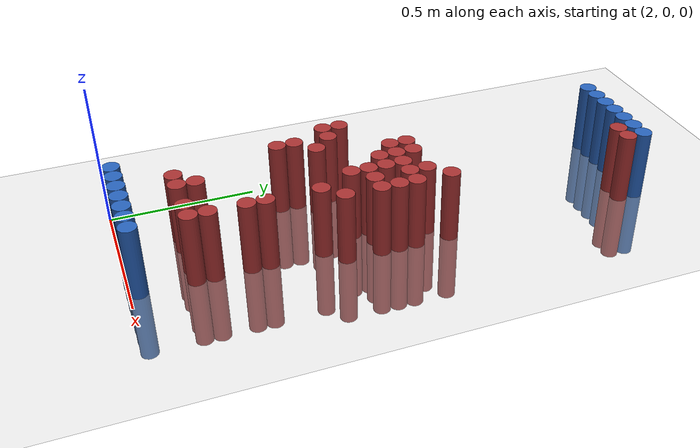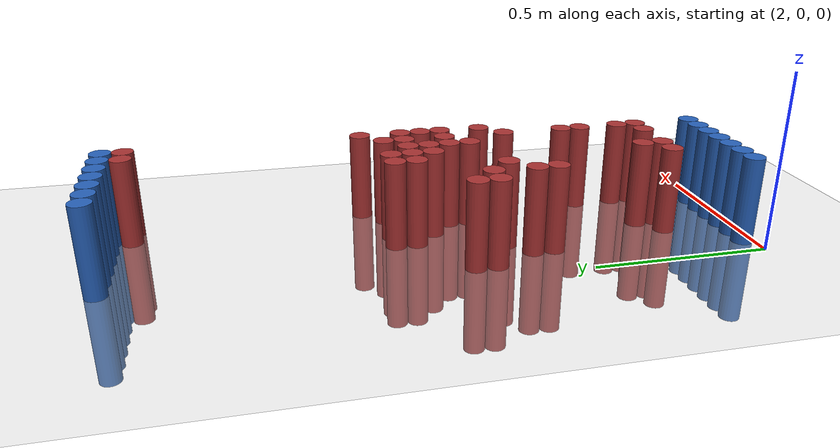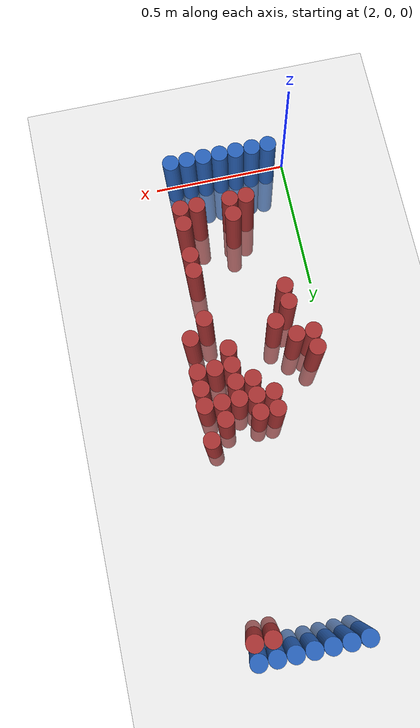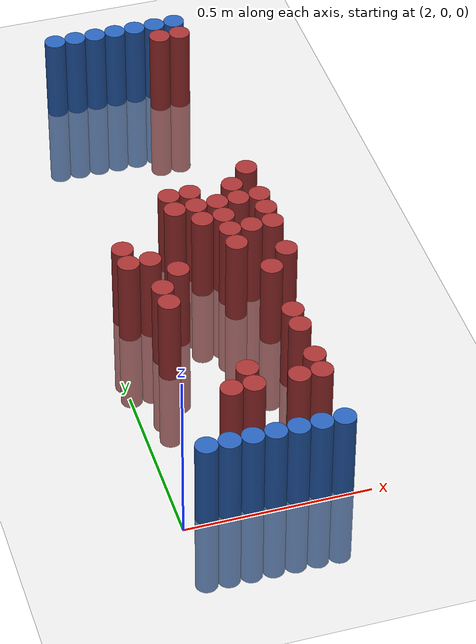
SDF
<sdf version="1.6">
 <world name="default">
  <model name="ground_plane">
   <static>1</static>
   <link name="link">
    <collision name="collision">
     <geometry><plane><normal>0 0 1</normal><size>100 100</size></plane></geometry>
     <surface><friction><ode><mu>100</mu><mu2>50</mu2></ode></friction></surface>
    </collision>
    <visual name="visual">
     <cast_shadows>0</cast_shadows>
     <geometry><plane><normal>0 0 1</normal><size>100 100</size></plane></geometry>
     <material>
      <script><uri>file://media/materials/scripts/gazebo.material</uri><name>Gazebo/Grey</name></script>
     </material>
    </visual>
   </link>
  </model>
  <model name="unit_cylinder_96">
   <static>1</static>
   <pose>2.130000 1.770000 0.000000 0.000000 0.000000 0.000000</pose>
   <link name="link">
    <inertial>
     <mass>1</mass>
     <inertia><ixx>0.145833</ixx><ixy>0</ixy><ixz>0</ixz><iyy>0.145833</iyy><iyz>0</iyz><izz>0.125</izz></inertia>
    </inertial>
    <collision name="collision">
     <geometry><cylinder><radius>0.030000</radius><length>0.5</length></cylinder></geometry>
    </collision>
    <visual name="visual">
     <geometry><cylinder><radius>0.030000</radius><length>0.5</length></cylinder></geometry>
     <material>
      <ambient>0.152000 0.379000 0.720000 1</ambient>
      <diffuse>0.152000 0.379000 0.720000 1</diffuse>
     </material>
     <material>
      <script><name>Gazebo/Grey</name><uri>file://media/materials/scripts/gazebo.material</uri></script>
     </material>
    </visual>
   </link>
  </model>
  <model name="unit_cylinder_97">
   <static>1</static>
   <pose>2.190000 1.770000 0.000000 0.000000 0.000000 0.000000</pose>
   <link name="link">
    <inertial>
     <mass>1</mass>
     <inertia><ixx>0.145833</ixx><ixy>0</ixy><ixz>0</ixz><iyy>0.145833</iyy><iyz>0</iyz><izz>0.125</izz></inertia>
    </inertial>
    <collision name="collision">
     <geometry><cylinder><radius>0.030000</radius><length>0.5</length></cylinder></geometry>
    </collision>
    <visual name="visual">
     <geometry><cylinder><radius>0.030000</radius><length>0.5</length></cylinder></geometry>
     <material>
      <ambient>0.152000 0.379000 0.720000 1</ambient>
      <diffuse>0.152000 0.379000 0.720000 1</diffuse>
     </material>
     <material>
      <script><name>Gazebo/Grey</name><uri>file://media/materials/scripts/gazebo.material</uri></script>
     </material>
    </visual>
   </link>
  </model>
  <model name="unit_cylinder_98">
   <static>1</static>
   <pose>2.250000 1.770000 0.000000 0.000000 0.000000 0.000000</pose>
   <link name="link">
    <inertial>
     <mass>1</mass>
     <inertia><ixx>0.145833</ixx><ixy>0</ixy><ixz>0</ixz><iyy>0.145833</iyy><iyz>0</iyz><izz>0.125</izz></inertia>
    </inertial>
    <collision name="collision">
     <geometry><cylinder><radius>0.030000</radius><length>0.5</length></cylinder></geometry>
    </collision>
    <visual name="visual">
     <geometry><cylinder><radius>0.030000</radius><length>0.5</length></cylinder></geometry>
     <material>
      <ambient>0.152000 0.379000 0.720000 1</ambient>
      <diffuse>0.152000 0.379000 0.720000 1</diffuse>
     </material>
     <material>
      <script><name>Gazebo/Grey</name><uri>file://media/materials/scripts/gazebo.material</uri></script>
     </material>
    </visual>
   </link>
  </model>
  <model name="unit_cylinder_99">
   <static>1</static>
   <pose>2.310000 1.770000 0.000000 0.000000 0.000000 0.000000</pose>
   <link name="link">
    <inertial>
     <mass>1</mass>
     <inertia><ixx>0.145833</ixx><ixy>0</ixy><ixz>0</ixz><iyy>0.145833</iyy><iyz>0</iyz><izz>0.125</izz></inertia>
    </inertial>
    <collision name="collision">
     <geometry><cylinder><radius>0.030000</radius><length>0.5</length></cylinder></geometry>
    </collision>
    <visual name="visual">
     <geometry><cylinder><radius>0.030000</radius><length>0.5</length></cylinder></geometry>
     <material>
      <ambient>0.152000 0.379000 0.720000 1</ambient>
      <diffuse>0.152000 0.379000 0.720000 1</diffuse>
     </material>
     <material>
      <script><name>Gazebo/Grey</name><uri>file://media/materials/scripts/gazebo.material</uri></script>
     </material>
    </visual>
   </link>
  </model>
  <model name="unit_cylinder_100">
   <static>1</static>
   <pose>2.370000 1.770000 0.000000 0.000000 0.000000 0.000000</pose>
   <link name="link">
    <inertial>
     <mass>1</mass>
     <inertia><ixx>0.145833</ixx><ixy>0</ixy><ixz>0</ixz><iyy>0.145833</iyy><iyz>0</iyz><izz>0.125</izz></inertia>
    </inertial>
    <collision name="collision">
     <geometry><cylinder><radius>0.030000</radius><length>0.5</length></cylinder></geometry>
    </collision>
    <visual name="visual">
     <geometry><cylinder><radius>0.030000</radius><length>0.5</length></cylinder></geometry>
     <material>
      <ambient>0.152000 0.379000 0.720000 1</ambient>
      <diffuse>0.152000 0.379000 0.720000 1</diffuse>
     </material>
     <material>
      <script><name>Gazebo/Grey</name><uri>file://media/materials/scripts/gazebo.material</uri></script>
     </material>
    </visual>
   </link>
  </model>
  <model name="unit_cylinder_101">
   <static>1</static>
   <pose>2.430000 1.770000 0.000000 0.000000 0.000000 0.000000</pose>
   <link name="link">
    <inertial>
     <mass>1</mass>
     <inertia><ixx>0.145833</ixx><ixy>0</ixy><ixz>0</ixz><iyy>0.145833</iyy><iyz>0</iyz><izz>0.125</izz></inertia>
    </inertial>
    <collision name="collision">
     <geometry><cylinder><radius>0.030000</radius><length>0.5</length></cylinder></geometry>
    </collision>
    <visual name="visual">
     <geometry><cylinder><radius>0.030000</radius><length>0.5</length></cylinder></geometry>
     <material>
      <ambient>0.152000 0.379000 0.720000 1</ambient>
      <diffuse>0.152000 0.379000 0.720000 1</diffuse>
     </material>
     <material>
      <script><name>Gazebo/Grey</name><uri>file://media/materials/scripts/gazebo.material</uri></script>
     </material>
    </visual>
   </link>
  </model>
  <model name="unit_cylinder_102">
   <static>1</static>
   <pose>2.490000 1.770000 0.000000 0.000000 0.000000 0.000000</pose>
   <link name="link">
    <inertial>
     <mass>1</mass>
     <inertia><ixx>0.145833</ixx><ixy>0</ixy><ixz>0</ixz><iyy>0.145833</iyy><iyz>0</iyz><izz>0.125</izz></inertia>
    </inertial>
    <collision name="collision">
     <geometry><cylinder><radius>0.030000</radius><length>0.5</length></cylinder></geometry>
    </collision>
    <visual name="visual">
     <geometry><cylinder><radius>0.030000</radius><length>0.5</length></cylinder></geometry>
     <material>
      <ambient>0.152000 0.379000 0.720000 1</ambient>
      <diffuse>0.152000 0.379000 0.720000 1</diffuse>
     </material>
     <material>
      <script><name>Gazebo/Grey</name><uri>file://media/materials/scripts/gazebo.material</uri></script>
     </material>
    </visual>
   </link>
  </model>
  <model name="unit_cylinder_125">
   <static>1</static>
   <pose>2.430000 1.710000 0.000000 0.000000 0.000000 0.000000</pose>
   <link name="link">
    <inertial>
     <mass>1</mass>
     <inertia><ixx>0.145833</ixx><ixy>0</ixy><ixz>0</ixz><iyy>0.145833</iyy><iyz>0</iyz><izz>0.125</izz></inertia>
    </inertial>
    <collision name="collision">
     <geometry><cylinder><radius>0.030000</radius><length>0.5</length></cylinder></geometry>
    </collision>
    <visual name="visual">
     <geometry><cylinder><radius>0.030000</radius><length>0.5</length></cylinder></geometry>
     <material>
      <ambient>0.648000 0.192000 0.192000 1</ambient>
      <diffuse>0.648000 0.192000 0.192000 1</diffuse>
     </material>
     <material>
      <script><name>Gazebo/Grey</name><uri>file://media/materials/scripts/gazebo.material</uri></script>
     </material>
    </visual>
   </link>
  </model>
  <model name="unit_cylinder_126">
   <static>1</static>
   <pose>2.490000 1.710000 0.000000 0.000000 0.000000 0.000000</pose>
   <link name="link">
    <inertial>
     <mass>1</mass>
     <inertia><ixx>0.145833</ixx><ixy>0</ixy><ixz>0</ixz><iyy>0.145833</iyy><iyz>0</iyz><izz>0.125</izz></inertia>
    </inertial>
    <collision name="collision">
     <geometry><cylinder><radius>0.030000</radius><length>0.5</length></cylinder></geometry>
    </collision>
    <visual name="visual">
     <geometry><cylinder><radius>0.030000</radius><length>0.5</length></cylinder></geometry>
     <material>
      <ambient>0.648000 0.192000 0.192000 1</ambient>
      <diffuse>0.648000 0.192000 0.192000 1</diffuse>
     </material>
     <material>
      <script><name>Gazebo/Grey</name><uri>file://media/materials/scripts/gazebo.material</uri></script>
     </material>
    </visual>
   </link>
  </model>
  <model name="unit_cylinder_179">
   <static>1</static>
   <pose>2.490000 1.050000 0.000000 0.000000 0.000000 0.000000</pose>
   <link name="link">
    <inertial>
     <mass>1</mass>
     <inertia><ixx>0.145833</ixx><ixy>0</ixy><ixz>0</ixz><iyy>0.145833</iyy><iyz>0</iyz><izz>0.125</izz></inertia>
    </inertial>
    <collision name="collision">
     <geometry><cylinder><radius>0.030000</radius><length>0.5</length></cylinder></geometry>
    </collision>
    <visual name="visual">
     <geometry><cylinder><radius>0.030000</radius><length>0.5</length></cylinder></geometry>
     <material>
      <ambient>0.648000 0.192000 0.192000 1</ambient>
      <diffuse>0.648000 0.192000 0.192000 1</diffuse>
     </material>
     <material>
      <script><name>Gazebo/Grey</name><uri>file://media/materials/scripts/gazebo.material</uri></script>
     </material>
    </visual>
   </link>
  </model>
  <model name="unit_cylinder_182">
   <static>1</static>
   <pose>2.250000 0.990000 0.000000 0.000000 0.000000 0.000000</pose>
   <link name="link">
    <inertial>
     <mass>1</mass>
     <inertia><ixx>0.145833</ixx><ixy>0</ixy><ixz>0</ixz><iyy>0.145833</iyy><iyz>0</iyz><izz>0.125</izz></inertia>
    </inertial>
    <collision name="collision">
     <geometry><cylinder><radius>0.030000</radius><length>0.5</length></cylinder></geometry>
    </collision>
    <visual name="visual">
     <geometry><cylinder><radius>0.030000</radius><length>0.5</length></cylinder></geometry>
     <material>
      <ambient>0.648000 0.192000 0.192000 1</ambient>
      <diffuse>0.648000 0.192000 0.192000 1</diffuse>
     </material>
     <material>
      <script><name>Gazebo/Grey</name><uri>file://media/materials/scripts/gazebo.material</uri></script>
     </material>
    </visual>
   </link>
  </model>
  <model name="unit_cylinder_183">
   <static>1</static>
   <pose>2.310000 0.990000 0.000000 0.000000 0.000000 0.000000</pose>
   <link name="link">
    <inertial>
     <mass>1</mass>
     <inertia><ixx>0.145833</ixx><ixy>0</ixy><ixz>0</ixz><iyy>0.145833</iyy><iyz>0</iyz><izz>0.125</izz></inertia>
    </inertial>
    <collision name="collision">
     <geometry><cylinder><radius>0.030000</radius><length>0.5</length></cylinder></geometry>
    </collision>
    <visual name="visual">
     <geometry><cylinder><radius>0.030000</radius><length>0.5</length></cylinder></geometry>
     <material>
      <ambient>0.648000 0.192000 0.192000 1</ambient>
      <diffuse>0.648000 0.192000 0.192000 1</diffuse>
     </material>
     <material>
      <script><name>Gazebo/Grey</name><uri>file://media/materials/scripts/gazebo.material</uri></script>
     </material>
    </visual>
   </link>
  </model>
  <model name="unit_cylinder_184">
   <static>1</static>
   <pose>2.430000 0.990000 0.000000 0.000000 0.000000 0.000000</pose>
   <link name="link">
    <inertial>
     <mass>1</mass>
     <inertia><ixx>0.145833</ixx><ixy>0</ixy><ixz>0</ixz><iyy>0.145833</iyy><iyz>0</iyz><izz>0.125</izz></inertia>
    </inertial>
    <collision name="collision">
     <geometry><cylinder><radius>0.030000</radius><length>0.5</length></cylinder></geometry>
    </collision>
    <visual name="visual">
     <geometry><cylinder><radius>0.030000</radius><length>0.5</length></cylinder></geometry>
     <material>
      <ambient>0.648000 0.192000 0.192000 1</ambient>
      <diffuse>0.648000 0.192000 0.192000 1</diffuse>
     </material>
     <material>
      <script><name>Gazebo/Grey</name><uri>file://media/materials/scripts/gazebo.material</uri></script>
     </material>
    </visual>
   </link>
  </model>
  <model name="unit_cylinder_185">
   <static>1</static>
   <pose>2.250000 0.930000 0.000000 0.000000 0.000000 0.000000</pose>
   <link name="link">
    <inertial>
     <mass>1</mass>
     <inertia><ixx>0.145833</ixx><ixy>0</ixy><ixz>0</ixz><iyy>0.145833</iyy><iyz>0</iyz><izz>0.125</izz></inertia>
    </inertial>
    <collision name="collision">
     <geometry><cylinder><radius>0.030000</radius><length>0.5</length></cylinder></geometry>
    </collision>
    <visual name="visual">
     <geometry><cylinder><radius>0.030000</radius><length>0.5</length></cylinder></geometry>
     <material>
      <ambient>0.648000 0.192000 0.192000 1</ambient>
      <diffuse>0.648000 0.192000 0.192000 1</diffuse>
     </material>
     <material>
      <script><name>Gazebo/Grey</name><uri>file://media/materials/scripts/gazebo.material</uri></script>
     </material>
    </visual>
   </link>
  </model>
  <model name="unit_cylinder_186">
   <static>1</static>
   <pose>2.310000 0.930000 0.000000 0.000000 0.000000 0.000000</pose>
   <link name="link">
    <inertial>
     <mass>1</mass>
     <inertia><ixx>0.145833</ixx><ixy>0</ixy><ixz>0</ixz><iyy>0.145833</iyy><iyz>0</iyz><izz>0.125</izz></inertia>
    </inertial>
    <collision name="collision">
     <geometry><cylinder><radius>0.030000</radius><length>0.5</length></cylinder></geometry>
    </collision>
    <visual name="visual">
     <geometry><cylinder><radius>0.030000</radius><length>0.5</length></cylinder></geometry>
     <material>
      <ambient>0.648000 0.192000 0.192000 1</ambient>
      <diffuse>0.648000 0.192000 0.192000 1</diffuse>
     </material>
     <material>
      <script><name>Gazebo/Grey</name><uri>file://media/materials/scripts/gazebo.material</uri></script>
     </material>
    </visual>
   </link>
  </model>
  <model name="unit_cylinder_187">
   <static>1</static>
   <pose>2.370000 0.930000 0.000000 0.000000 0.000000 0.000000</pose>
   <link name="link">
    <inertial>
     <mass>1</mass>
     <inertia><ixx>0.145833</ixx><ixy>0</ixy><ixz>0</ixz><iyy>0.145833</iyy><iyz>0</iyz><izz>0.125</izz></inertia>
    </inertial>
    <collision name="collision">
     <geometry><cylinder><radius>0.030000</radius><length>0.5</length></cylinder></geometry>
    </collision>
    <visual name="visual">
     <geometry><cylinder><radius>0.030000</radius><length>0.5</length></cylinder></geometry>
     <material>
      <ambient>0.648000 0.192000 0.192000 1</ambient>
      <diffuse>0.648000 0.192000 0.192000 1</diffuse>
     </material>
     <material>
      <script><name>Gazebo/Grey</name><uri>file://media/materials/scripts/gazebo.material</uri></script>
     </material>
    </visual>
   </link>
  </model>
  <model name="unit_cylinder_188">
   <static>1</static>
   <pose>2.430000 0.930000 0.000000 0.000000 0.000000 0.000000</pose>
   <link name="link">
    <inertial>
     <mass>1</mass>
     <inertia><ixx>0.145833</ixx><ixy>0</ixy><ixz>0</ixz><iyy>0.145833</iyy><iyz>0</iyz><izz>0.125</izz></inertia>
    </inertial>
    <collision name="collision">
     <geometry><cylinder><radius>0.030000</radius><length>0.5</length></cylinder></geometry>
    </collision>
    <visual name="visual">
     <geometry><cylinder><radius>0.030000</radius><length>0.5</length></cylinder></geometry>
     <material>
      <ambient>0.648000 0.192000 0.192000 1</ambient>
      <diffuse>0.648000 0.192000 0.192000 1</diffuse>
     </material>
     <material>
      <script><name>Gazebo/Grey</name><uri>file://media/materials/scripts/gazebo.material</uri></script>
     </material>
    </visual>
   </link>
  </model>
  <model name="unit_cylinder_189">
   <static>1</static>
   <pose>2.490000 0.930000 0.000000 0.000000 0.000000 0.000000</pose>
   <link name="link">
    <inertial>
     <mass>1</mass>
     <inertia><ixx>0.145833</ixx><ixy>0</ixy><ixz>0</ixz><iyy>0.145833</iyy><iyz>0</iyz><izz>0.125</izz></inertia>
    </inertial>
    <collision name="collision">
     <geometry><cylinder><radius>0.030000</radius><length>0.5</length></cylinder></geometry>
    </collision>
    <visual name="visual">
     <geometry><cylinder><radius>0.030000</radius><length>0.5</length></cylinder></geometry>
     <material>
      <ambient>0.648000 0.192000 0.192000 1</ambient>
      <diffuse>0.648000 0.192000 0.192000 1</diffuse>
     </material>
     <material>
      <script><name>Gazebo/Grey</name><uri>file://media/materials/scripts/gazebo.material</uri></script>
     </material>
    </visual>
   </link>
  </model>
  <model name="unit_cylinder_190">
   <static>1</static>
   <pose>2.310000 0.870000 0.000000 0.000000 0.000000 0.000000</pose>
   <link name="link">
    <inertial>
     <mass>1</mass>
     <inertia><ixx>0.145833</ixx><ixy>0</ixy><ixz>0</ixz><iyy>0.145833</iyy><iyz>0</iyz><izz>0.125</izz></inertia>
    </inertial>
    <collision name="collision">
     <geometry><cylinder><radius>0.030000</radius><length>0.5</length></cylinder></geometry>
    </collision>
    <visual name="visual">
     <geometry><cylinder><radius>0.030000</radius><length>0.5</length></cylinder></geometry>
     <material>
      <ambient>0.648000 0.192000 0.192000 1</ambient>
      <diffuse>0.648000 0.192000 0.192000 1</diffuse>
     </material>
     <material>
      <script><name>Gazebo/Grey</name><uri>file://media/materials/scripts/gazebo.material</uri></script>
     </material>
    </visual>
   </link>
  </model>
  <model name="unit_cylinder_191">
   <static>1</static>
   <pose>2.370000 0.870000 0.000000 0.000000 0.000000 0.000000</pose>
   <link name="link">
    <inertial>
     <mass>1</mass>
     <inertia><ixx>0.145833</ixx><ixy>0</ixy><ixz>0</ixz><iyy>0.145833</iyy><iyz>0</iyz><izz>0.125</izz></inertia>
    </inertial>
    <collision name="collision">
     <geometry><cylinder><radius>0.030000</radius><length>0.5</length></cylinder></geometry>
    </collision>
    <visual name="visual">
     <geometry><cylinder><radius>0.030000</radius><length>0.5</length></cylinder></geometry>
     <material>
      <ambient>0.648000 0.192000 0.192000 1</ambient>
      <diffuse>0.648000 0.192000 0.192000 1</diffuse>
     </material>
     <material>
      <script><name>Gazebo/Grey</name><uri>file://media/materials/scripts/gazebo.material</uri></script>
     </material>
    </visual>
   </link>
  </model>
  <model name="unit_cylinder_192">
   <static>1</static>
   <pose>2.490000 0.870000 0.000000 0.000000 0.000000 0.000000</pose>
   <link name="link">
    <inertial>
     <mass>1</mass>
     <inertia><ixx>0.145833</ixx><ixy>0</ixy><ixz>0</ixz><iyy>0.145833</iyy><iyz>0</iyz><izz>0.125</izz></inertia>
    </inertial>
    <collision name="collision">
     <geometry><cylinder><radius>0.030000</radius><length>0.5</length></cylinder></geometry>
    </collision>
    <visual name="visual">
     <geometry><cylinder><radius>0.030000</radius><length>0.5</length></cylinder></geometry>
     <material>
      <ambient>0.648000 0.192000 0.192000 1</ambient>
      <diffuse>0.648000 0.192000 0.192000 1</diffuse>
     </material>
     <material>
      <script><name>Gazebo/Grey</name><uri>file://media/materials/scripts/gazebo.material</uri></script>
     </material>
    </visual>
   </link>
  </model>
  <model name="unit_cylinder_195">
   <static>1</static>
   <pose>2.070000 0.810000 0.000000 0.000000 0.000000 0.000000</pose>
   <link name="link">
    <inertial>
     <mass>1</mass>
     <inertia><ixx>0.145833</ixx><ixy>0</ixy><ixz>0</ixz><iyy>0.145833</iyy><iyz>0</iyz><izz>0.125</izz></inertia>
    </inertial>
    <collision name="collision">
     <geometry><cylinder><radius>0.030000</radius><length>0.5</length></cylinder></geometry>
    </collision>
    <visual name="visual">
     <geometry><cylinder><radius>0.030000</radius><length>0.5</length></cylinder></geometry>
     <material>
      <ambient>0.648000 0.192000 0.192000 1</ambient>
      <diffuse>0.648000 0.192000 0.192000 1</diffuse>
     </material>
     <material>
      <script><name>Gazebo/Grey</name><uri>file://media/materials/scripts/gazebo.material</uri></script>
     </material>
    </visual>
   </link>
  </model>
  <model name="unit_cylinder_196">
   <static>1</static>
   <pose>2.370000 0.810000 0.000000 0.000000 0.000000 0.000000</pose>
   <link name="link">
    <inertial>
     <mass>1</mass>
     <inertia><ixx>0.145833</ixx><ixy>0</ixy><ixz>0</ixz><iyy>0.145833</iyy><iyz>0</iyz><izz>0.125</izz></inertia>
    </inertial>
    <collision name="collision">
     <geometry><cylinder><radius>0.030000</radius><length>0.5</length></cylinder></geometry>
    </collision>
    <visual name="visual">
     <geometry><cylinder><radius>0.030000</radius><length>0.5</length></cylinder></geometry>
     <material>
      <ambient>0.648000 0.192000 0.192000 1</ambient>
      <diffuse>0.648000 0.192000 0.192000 1</diffuse>
     </material>
     <material>
      <script><name>Gazebo/Grey</name><uri>file://media/materials/scripts/gazebo.material</uri></script>
     </material>
    </visual>
   </link>
  </model>
  <model name="unit_cylinder_197">
   <static>1</static>
   <pose>2.430000 0.810000 0.000000 0.000000 0.000000 0.000000</pose>
   <link name="link">
    <inertial>
     <mass>1</mass>
     <inertia><ixx>0.145833</ixx><ixy>0</ixy><ixz>0</ixz><iyy>0.145833</iyy><iyz>0</iyz><izz>0.125</izz></inertia>
    </inertial>
    <collision name="collision">
     <geometry><cylinder><radius>0.030000</radius><length>0.5</length></cylinder></geometry>
    </collision>
    <visual name="visual">
     <geometry><cylinder><radius>0.030000</radius><length>0.5</length></cylinder></geometry>
     <material>
      <ambient>0.648000 0.192000 0.192000 1</ambient>
      <diffuse>0.648000 0.192000 0.192000 1</diffuse>
     </material>
     <material>
      <script><name>Gazebo/Grey</name><uri>file://media/materials/scripts/gazebo.material</uri></script>
     </material>
    </visual>
   </link>
  </model>
  <model name="unit_cylinder_198">
   <static>1</static>
   <pose>2.490000 0.810000 0.000000 0.000000 0.000000 0.000000</pose>
   <link name="link">
    <inertial>
     <mass>1</mass>
     <inertia><ixx>0.145833</ixx><ixy>0</ixy><ixz>0</ixz><iyy>0.145833</iyy><iyz>0</iyz><izz>0.125</izz></inertia>
    </inertial>
    <collision name="collision">
     <geometry><cylinder><radius>0.030000</radius><length>0.5</length></cylinder></geometry>
    </collision>
    <visual name="visual">
     <geometry><cylinder><radius>0.030000</radius><length>0.5</length></cylinder></geometry>
     <material>
      <ambient>0.648000 0.192000 0.192000 1</ambient>
      <diffuse>0.648000 0.192000 0.192000 1</diffuse>
     </material>
     <material>
      <script><name>Gazebo/Grey</name><uri>file://media/materials/scripts/gazebo.material</uri></script>
     </material>
    </visual>
   </link>
  </model>
  <model name="unit_cylinder_200">
   <static>1</static>
   <pose>2.070000 0.750000 0.000000 0.000000 0.000000 0.000000</pose>
   <link name="link">
    <inertial>
     <mass>1</mass>
     <inertia><ixx>0.145833</ixx><ixy>0</ixy><ixz>0</ixz><iyy>0.145833</iyy><iyz>0</iyz><izz>0.125</izz></inertia>
    </inertial>
    <collision name="collision">
     <geometry><cylinder><radius>0.030000</radius><length>0.5</length></cylinder></geometry>
    </collision>
    <visual name="visual">
     <geometry><cylinder><radius>0.030000</radius><length>0.5</length></cylinder></geometry>
     <material>
      <ambient>0.648000 0.192000 0.192000 1</ambient>
      <diffuse>0.648000 0.192000 0.192000 1</diffuse>
     </material>
     <material>
      <script><name>Gazebo/Grey</name><uri>file://media/materials/scripts/gazebo.material</uri></script>
     </material>
    </visual>
   </link>
  </model>
  <model name="unit_cylinder_201">
   <static>1</static>
   <pose>2.130000 0.750000 0.000000 0.000000 0.000000 0.000000</pose>
   <link name="link">
    <inertial>
     <mass>1</mass>
     <inertia><ixx>0.145833</ixx><ixy>0</ixy><ixz>0</ixz><iyy>0.145833</iyy><iyz>0</iyz><izz>0.125</izz></inertia>
    </inertial>
    <collision name="collision">
     <geometry><cylinder><radius>0.030000</radius><length>0.5</length></cylinder></geometry>
    </collision>
    <visual name="visual">
     <geometry><cylinder><radius>0.030000</radius><length>0.5</length></cylinder></geometry>
     <material>
      <ambient>0.648000 0.192000 0.192000 1</ambient>
      <diffuse>0.648000 0.192000 0.192000 1</diffuse>
     </material>
     <material>
      <script><name>Gazebo/Grey</name><uri>file://media/materials/scripts/gazebo.material</uri></script>
     </material>
    </visual>
   </link>
  </model>
  <model name="unit_cylinder_202">
   <static>1</static>
   <pose>2.370000 0.750000 0.000000 0.000000 0.000000 0.000000</pose>
   <link name="link">
    <inertial>
     <mass>1</mass>
     <inertia><ixx>0.145833</ixx><ixy>0</ixy><ixz>0</ixz><iyy>0.145833</iyy><iyz>0</iyz><izz>0.125</izz></inertia>
    </inertial>
    <collision name="collision">
     <geometry><cylinder><radius>0.030000</radius><length>0.5</length></cylinder></geometry>
    </collision>
    <visual name="visual">
     <geometry><cylinder><radius>0.030000</radius><length>0.5</length></cylinder></geometry>
     <material>
      <ambient>0.648000 0.192000 0.192000 1</ambient>
      <diffuse>0.648000 0.192000 0.192000 1</diffuse>
     </material>
     <material>
      <script><name>Gazebo/Grey</name><uri>file://media/materials/scripts/gazebo.material</uri></script>
     </material>
    </visual>
   </link>
  </model>
  <model name="unit_cylinder_203">
   <static>1</static>
   <pose>2.190000 0.690000 0.000000 0.000000 0.000000 0.000000</pose>
   <link name="link">
    <inertial>
     <mass>1</mass>
     <inertia><ixx>0.145833</ixx><ixy>0</ixy><ixz>0</ixz><iyy>0.145833</iyy><iyz>0</iyz><izz>0.125</izz></inertia>
    </inertial>
    <collision name="collision">
     <geometry><cylinder><radius>0.030000</radius><length>0.5</length></cylinder></geometry>
    </collision>
    <visual name="visual">
     <geometry><cylinder><radius>0.030000</radius><length>0.5</length></cylinder></geometry>
     <material>
      <ambient>0.648000 0.192000 0.192000 1</ambient>
      <diffuse>0.648000 0.192000 0.192000 1</diffuse>
     </material>
     <material>
      <script><name>Gazebo/Grey</name><uri>file://media/materials/scripts/gazebo.material</uri></script>
     </material>
    </visual>
   </link>
  </model>
  <model name="unit_cylinder_204">
   <static>1</static>
   <pose>2.490000 0.690000 0.000000 0.000000 0.000000 0.000000</pose>
   <link name="link">
    <inertial>
     <mass>1</mass>
     <inertia><ixx>0.145833</ixx><ixy>0</ixy><ixz>0</ixz><iyy>0.145833</iyy><iyz>0</iyz><izz>0.125</izz></inertia>
    </inertial>
    <collision name="collision">
     <geometry><cylinder><radius>0.030000</radius><length>0.5</length></cylinder></geometry>
    </collision>
    <visual name="visual">
     <geometry><cylinder><radius>0.030000</radius><length>0.5</length></cylinder></geometry>
     <material>
      <ambient>0.648000 0.192000 0.192000 1</ambient>
      <diffuse>0.648000 0.192000 0.192000 1</diffuse>
     </material>
     <material>
      <script><name>Gazebo/Grey</name><uri>file://media/materials/scripts/gazebo.material</uri></script>
     </material>
    </visual>
   </link>
  </model>
  <model name="unit_cylinder_209">
   <static>1</static>
   <pose>2.130000 0.630000 0.000000 0.000000 0.000000 0.000000</pose>
   <link name="link">
    <inertial>
     <mass>1</mass>
     <inertia><ixx>0.145833</ixx><ixy>0</ixy><ixz>0</ixz><iyy>0.145833</iyy><iyz>0</iyz><izz>0.125</izz></inertia>
    </inertial>
    <collision name="collision">
     <geometry><cylinder><radius>0.030000</radius><length>0.5</length></cylinder></geometry>
    </collision>
    <visual name="visual">
     <geometry><cylinder><radius>0.030000</radius><length>0.5</length></cylinder></geometry>
     <material>
      <ambient>0.648000 0.192000 0.192000 1</ambient>
      <diffuse>0.648000 0.192000 0.192000 1</diffuse>
     </material>
     <material>
      <script><name>Gazebo/Grey</name><uri>file://media/materials/scripts/gazebo.material</uri></script>
     </material>
    </visual>
   </link>
  </model>
  <model name="unit_cylinder_210">
   <static>1</static>
   <pose>2.430000 0.630000 0.000000 0.000000 0.000000 0.000000</pose>
   <link name="link">
    <inertial>
     <mass>1</mass>
     <inertia><ixx>0.145833</ixx><ixy>0</ixy><ixz>0</ixz><iyy>0.145833</iyy><iyz>0</iyz><izz>0.125</izz></inertia>
    </inertial>
    <collision name="collision">
     <geometry><cylinder><radius>0.030000</radius><length>0.5</length></cylinder></geometry>
    </collision>
    <visual name="visual">
     <geometry><cylinder><radius>0.030000</radius><length>0.5</length></cylinder></geometry>
     <material>
      <ambient>0.648000 0.192000 0.192000 1</ambient>
      <diffuse>0.648000 0.192000 0.192000 1</diffuse>
     </material>
     <material>
      <script><name>Gazebo/Grey</name><uri>file://media/materials/scripts/gazebo.material</uri></script>
     </material>
    </visual>
   </link>
  </model>
  <model name="unit_cylinder_215">
   <static>1</static>
   <pose>2.130000 0.570000 0.000000 0.000000 0.000000 0.000000</pose>
   <link name="link">
    <inertial>
     <mass>1</mass>
     <inertia><ixx>0.145833</ixx><ixy>0</ixy><ixz>0</ixz><iyy>0.145833</iyy><iyz>0</iyz><izz>0.125</izz></inertia>
    </inertial>
    <collision name="collision">
     <geometry><cylinder><radius>0.030000</radius><length>0.5</length></cylinder></geometry>
    </collision>
    <visual name="visual">
     <geometry><cylinder><radius>0.030000</radius><length>0.5</length></cylinder></geometry>
     <material>
      <ambient>0.648000 0.192000 0.192000 1</ambient>
      <diffuse>0.648000 0.192000 0.192000 1</diffuse>
     </material>
     <material>
      <script><name>Gazebo/Grey</name><uri>file://media/materials/scripts/gazebo.material</uri></script>
     </material>
    </visual>
   </link>
  </model>
  <model name="unit_cylinder_223">
   <static>1</static>
   <pose>2.430000 0.450000 0.000000 0.000000 0.000000 0.000000</pose>
   <link name="link">
    <inertial>
     <mass>1</mass>
     <inertia><ixx>0.145833</ixx><ixy>0</ixy><ixz>0</ixz><iyy>0.145833</iyy><iyz>0</iyz><izz>0.125</izz></inertia>
    </inertial>
    <collision name="collision">
     <geometry><cylinder><radius>0.030000</radius><length>0.5</length></cylinder></geometry>
    </collision>
    <visual name="visual">
     <geometry><cylinder><radius>0.030000</radius><length>0.5</length></cylinder></geometry>
     <material>
      <ambient>0.648000 0.192000 0.192000 1</ambient>
      <diffuse>0.648000 0.192000 0.192000 1</diffuse>
     </material>
     <material>
      <script><name>Gazebo/Grey</name><uri>file://media/materials/scripts/gazebo.material</uri></script>
     </material>
    </visual>
   </link>
  </model>
  <model name="unit_cylinder_225">
   <static>1</static>
   <pose>2.430000 0.390000 0.000000 0.000000 0.000000 0.000000</pose>
   <link name="link">
    <inertial>
     <mass>1</mass>
     <inertia><ixx>0.145833</ixx><ixy>0</ixy><ixz>0</ixz><iyy>0.145833</iyy><iyz>0</iyz><izz>0.125</izz></inertia>
    </inertial>
    <collision name="collision">
     <geometry><cylinder><radius>0.030000</radius><length>0.5</length></cylinder></geometry>
    </collision>
    <visual name="visual">
     <geometry><cylinder><radius>0.030000</radius><length>0.5</length></cylinder></geometry>
     <material>
      <ambient>0.648000 0.192000 0.192000 1</ambient>
      <diffuse>0.648000 0.192000 0.192000 1</diffuse>
     </material>
     <material>
      <script><name>Gazebo/Grey</name><uri>file://media/materials/scripts/gazebo.material</uri></script>
     </material>
    </visual>
   </link>
  </model>
  <model name="unit_cylinder_229">
   <static>1</static>
   <pose>2.250000 0.270000 0.000000 0.000000 0.000000 0.000000</pose>
   <link name="link">
    <inertial>
     <mass>1</mass>
     <inertia><ixx>0.145833</ixx><ixy>0</ixy><ixz>0</ixz><iyy>0.145833</iyy><iyz>0</iyz><izz>0.125</izz></inertia>
    </inertial>
    <collision name="collision">
     <geometry><cylinder><radius>0.030000</radius><length>0.5</length></cylinder></geometry>
    </collision>
    <visual name="visual">
     <geometry><cylinder><radius>0.030000</radius><length>0.5</length></cylinder></geometry>
     <material>
      <ambient>0.648000 0.192000 0.192000 1</ambient>
      <diffuse>0.648000 0.192000 0.192000 1</diffuse>
     </material>
     <material>
      <script><name>Gazebo/Grey</name><uri>file://media/materials/scripts/gazebo.material</uri></script>
     </material>
    </visual>
   </link>
  </model>
  <model name="unit_cylinder_230">
   <static>1</static>
   <pose>2.430000 0.270000 0.000000 0.000000 0.000000 0.000000</pose>
   <link name="link">
    <inertial>
     <mass>1</mass>
     <inertia><ixx>0.145833</ixx><ixy>0</ixy><ixz>0</ixz><iyy>0.145833</iyy><iyz>0</iyz><izz>0.125</izz></inertia>
    </inertial>
    <collision name="collision">
     <geometry><cylinder><radius>0.030000</radius><length>0.5</length></cylinder></geometry>
    </collision>
    <visual name="visual">
     <geometry><cylinder><radius>0.030000</radius><length>0.5</length></cylinder></geometry>
     <material>
      <ambient>0.648000 0.192000 0.192000 1</ambient>
      <diffuse>0.648000 0.192000 0.192000 1</diffuse>
     </material>
     <material>
      <script><name>Gazebo/Grey</name><uri>file://media/materials/scripts/gazebo.material</uri></script>
     </material>
    </visual>
   </link>
  </model>
  <model name="unit_cylinder_233">
   <static>1</static>
   <pose>2.190000 0.210000 0.000000 0.000000 0.000000 0.000000</pose>
   <link name="link">
    <inertial>
     <mass>1</mass>
     <inertia><ixx>0.145833</ixx><ixy>0</ixy><ixz>0</ixz><iyy>0.145833</iyy><iyz>0</iyz><izz>0.125</izz></inertia>
    </inertial>
    <collision name="collision">
     <geometry><cylinder><radius>0.030000</radius><length>0.5</length></cylinder></geometry>
    </collision>
    <visual name="visual">
     <geometry><cylinder><radius>0.030000</radius><length>0.5</length></cylinder></geometry>
     <material>
      <ambient>0.648000 0.192000 0.192000 1</ambient>
      <diffuse>0.648000 0.192000 0.192000 1</diffuse>
     </material>
     <material>
      <script><name>Gazebo/Grey</name><uri>file://media/materials/scripts/gazebo.material</uri></script>
     </material>
    </visual>
   </link>
  </model>
  <model name="unit_cylinder_234">
   <static>1</static>
   <pose>2.250000 0.210000 0.000000 0.000000 0.000000 0.000000</pose>
   <link name="link">
    <inertial>
     <mass>1</mass>
     <inertia><ixx>0.145833</ixx><ixy>0</ixy><ixz>0</ixz><iyy>0.145833</iyy><iyz>0</iyz><izz>0.125</izz></inertia>
    </inertial>
    <collision name="collision">
     <geometry><cylinder><radius>0.030000</radius><length>0.5</length></cylinder></geometry>
    </collision>
    <visual name="visual">
     <geometry><cylinder><radius>0.030000</radius><length>0.5</length></cylinder></geometry>
     <material>
      <ambient>0.648000 0.192000 0.192000 1</ambient>
      <diffuse>0.648000 0.192000 0.192000 1</diffuse>
     </material>
     <material>
      <script><name>Gazebo/Grey</name><uri>file://media/materials/scripts/gazebo.material</uri></script>
     </material>
    </visual>
   </link>
  </model>
  <model name="unit_cylinder_235">
   <static>1</static>
   <pose>2.370000 0.210000 0.000000 0.000000 0.000000 0.000000</pose>
   <link name="link">
    <inertial>
     <mass>1</mass>
     <inertia><ixx>0.145833</ixx><ixy>0</ixy><ixz>0</ixz><iyy>0.145833</iyy><iyz>0</iyz><izz>0.125</izz></inertia>
    </inertial>
    <collision name="collision">
     <geometry><cylinder><radius>0.030000</radius><length>0.5</length></cylinder></geometry>
    </collision>
    <visual name="visual">
     <geometry><cylinder><radius>0.030000</radius><length>0.5</length></cylinder></geometry>
     <material>
      <ambient>0.648000 0.192000 0.192000 1</ambient>
      <diffuse>0.648000 0.192000 0.192000 1</diffuse>
     </material>
     <material>
      <script><name>Gazebo/Grey</name><uri>file://media/materials/scripts/gazebo.material</uri></script>
     </material>
    </visual>
   </link>
  </model>
  <model name="unit_cylinder_236">
   <static>1</static>
   <pose>2.430000 0.210000 0.000000 0.000000 0.000000 0.000000</pose>
   <link name="link">
    <inertial>
     <mass>1</mass>
     <inertia><ixx>0.145833</ixx><ixy>0</ixy><ixz>0</ixz><iyy>0.145833</iyy><iyz>0</iyz><izz>0.125</izz></inertia>
    </inertial>
    <collision name="collision">
     <geometry><cylinder><radius>0.030000</radius><length>0.5</length></cylinder></geometry>
    </collision>
    <visual name="visual">
     <geometry><cylinder><radius>0.030000</radius><length>0.5</length></cylinder></geometry>
     <material>
      <ambient>0.648000 0.192000 0.192000 1</ambient>
      <diffuse>0.648000 0.192000 0.192000 1</diffuse>
     </material>
     <material>
      <script><name>Gazebo/Grey</name><uri>file://media/materials/scripts/gazebo.material</uri></script>
     </material>
    </visual>
   </link>
  </model>
  <model name="unit_cylinder_258">
   <static>1</static>
   <pose>2.070000 0.030000 0.000000 0.000000 0.000000 0.000000</pose>
   <link name="link">
    <inertial>
     <mass>1</mass>
     <inertia><ixx>0.145833</ixx><ixy>0</ixy><ixz>0</ixz><iyy>0.145833</iyy><iyz>0</iyz><izz>0.125</izz></inertia>
    </inertial>
    <collision name="collision">
     <geometry><cylinder><radius>0.030000</radius><length>0.5</length></cylinder></geometry>
    </collision>
    <visual name="visual">
     <geometry><cylinder><radius>0.030000</radius><length>0.5</length></cylinder></geometry>
     <material>
      <ambient>0.152000 0.379000 0.720000 1</ambient>
      <diffuse>0.152000 0.379000 0.720000 1</diffuse>
     </material>
     <material>
      <script><name>Gazebo/Grey</name><uri>file://media/materials/scripts/gazebo.material</uri></script>
     </material>
    </visual>
   </link>
  </model>
  <model name="unit_cylinder_259">
   <static>1</static>
   <pose>2.130000 0.030000 0.000000 0.000000 0.000000 0.000000</pose>
   <link name="link">
    <inertial>
     <mass>1</mass>
     <inertia><ixx>0.145833</ixx><ixy>0</ixy><ixz>0</ixz><iyy>0.145833</iyy><iyz>0</iyz><izz>0.125</izz></inertia>
    </inertial>
    <collision name="collision">
     <geometry><cylinder><radius>0.030000</radius><length>0.5</length></cylinder></geometry>
    </collision>
    <visual name="visual">
     <geometry><cylinder><radius>0.030000</radius><length>0.5</length></cylinder></geometry>
     <material>
      <ambient>0.152000 0.379000 0.720000 1</ambient>
      <diffuse>0.152000 0.379000 0.720000 1</diffuse>
     </material>
     <material>
      <script><name>Gazebo/Grey</name><uri>file://media/materials/scripts/gazebo.material</uri></script>
     </material>
    </visual>
   </link>
  </model>
  <model name="unit_cylinder_260">
   <static>1</static>
   <pose>2.190000 0.030000 0.000000 0.000000 0.000000 0.000000</pose>
   <link name="link">
    <inertial>
     <mass>1</mass>
     <inertia><ixx>0.145833</ixx><ixy>0</ixy><ixz>0</ixz><iyy>0.145833</iyy><iyz>0</iyz><izz>0.125</izz></inertia>
    </inertial>
    <collision name="collision">
     <geometry><cylinder><radius>0.030000</radius><length>0.5</length></cylinder></geometry>
    </collision>
    <visual name="visual">
     <geometry><cylinder><radius>0.030000</radius><length>0.5</length></cylinder></geometry>
     <material>
      <ambient>0.152000 0.379000 0.720000 1</ambient>
      <diffuse>0.152000 0.379000 0.720000 1</diffuse>
     </material>
     <material>
      <script><name>Gazebo/Grey</name><uri>file://media/materials/scripts/gazebo.material</uri></script>
     </material>
    </visual>
   </link>
  </model>
  <model name="unit_cylinder_261">
   <static>1</static>
   <pose>2.250000 0.030000 0.000000 0.000000 0.000000 0.000000</pose>
   <link name="link">
    <inertial>
     <mass>1</mass>
     <inertia><ixx>0.145833</ixx><ixy>0</ixy><ixz>0</ixz><iyy>0.145833</iyy><iyz>0</iyz><izz>0.125</izz></inertia>
    </inertial>
    <collision name="collision">
     <geometry><cylinder><radius>0.030000</radius><length>0.5</length></cylinder></geometry>
    </collision>
    <visual name="visual">
     <geometry><cylinder><radius>0.030000</radius><length>0.5</length></cylinder></geometry>
     <material>
      <ambient>0.152000 0.379000 0.720000 1</ambient>
      <diffuse>0.152000 0.379000 0.720000 1</diffuse>
     </material>
     <material>
      <script><name>Gazebo/Grey</name><uri>file://media/materials/scripts/gazebo.material</uri></script>
     </material>
    </visual>
   </link>
  </model>
  <model name="unit_cylinder_262">
   <static>1</static>
   <pose>2.310000 0.030000 0.000000 0.000000 0.000000 0.000000</pose>
   <link name="link">
    <inertial>
     <mass>1</mass>
     <inertia><ixx>0.145833</ixx><ixy>0</ixy><ixz>0</ixz><iyy>0.145833</iyy><iyz>0</iyz><izz>0.125</izz></inertia>
    </inertial>
    <collision name="collision">
     <geometry><cylinder><radius>0.030000</radius><length>0.5</length></cylinder></geometry>
    </collision>
    <visual name="visual">
     <geometry><cylinder><radius>0.030000</radius><length>0.5</length></cylinder></geometry>
     <material>
      <ambient>0.152000 0.379000 0.720000 1</ambient>
      <diffuse>0.152000 0.379000 0.720000 1</diffuse>
     </material>
     <material>
      <script><name>Gazebo/Grey</name><uri>file://media/materials/scripts/gazebo.material</uri></script>
     </material>
    </visual>
   </link>
  </model>
  <model name="unit_cylinder_263">
   <static>1</static>
   <pose>2.370000 0.030000 0.000000 0.000000 0.000000 0.000000</pose>
   <link name="link">
    <inertial>
     <mass>1</mass>
     <inertia><ixx>0.145833</ixx><ixy>0</ixy><ixz>0</ixz><iyy>0.145833</iyy><iyz>0</iyz><izz>0.125</izz></inertia>
    </inertial>
    <collision name="collision">
     <geometry><cylinder><radius>0.030000</radius><length>0.5</length></cylinder></geometry>
    </collision>
    <visual name="visual">
     <geometry><cylinder><radius>0.030000</radius><length>0.5</length></cylinder></geometry>
     <material>
      <ambient>0.152000 0.379000 0.720000 1</ambient>
      <diffuse>0.152000 0.379000 0.720000 1</diffuse>
     </material>
     <material>
      <script><name>Gazebo/Grey</name><uri>file://media/materials/scripts/gazebo.material</uri></script>
     </material>
    </visual>
   </link>
  </model>
  <model name="unit_cylinder_264">
   <static>1</static>
   <pose>2.430000 0.030000 0.000000 0.000000 0.000000 0.000000</pose>
   <link name="link">
    <inertial>
     <mass>1</mass>
     <inertia><ixx>0.145833</ixx><ixy>0</ixy><ixz>0</ixz><iyy>0.145833</iyy><iyz>0</iyz><izz>0.125</izz></inertia>
    </inertial>
    <collision name="collision">
     <geometry><cylinder><radius>0.030000</radius><length>0.5</length></cylinder></geometry>
    </collision>
    <visual name="visual">
     <geometry><cylinder><radius>0.030000</radius><length>0.5</length></cylinder></geometry>
     <material>
      <ambient>0.152000 0.379000 0.720000 1</ambient>
      <diffuse>0.152000 0.379000 0.720000 1</diffuse>
     </material>
     <material>
      <script><name>Gazebo/Grey</name><uri>file://media/materials/scripts/gazebo.material</uri></script>
     </material>
    </visual>
   </link>
  </model>
 </world>
</sdf>
